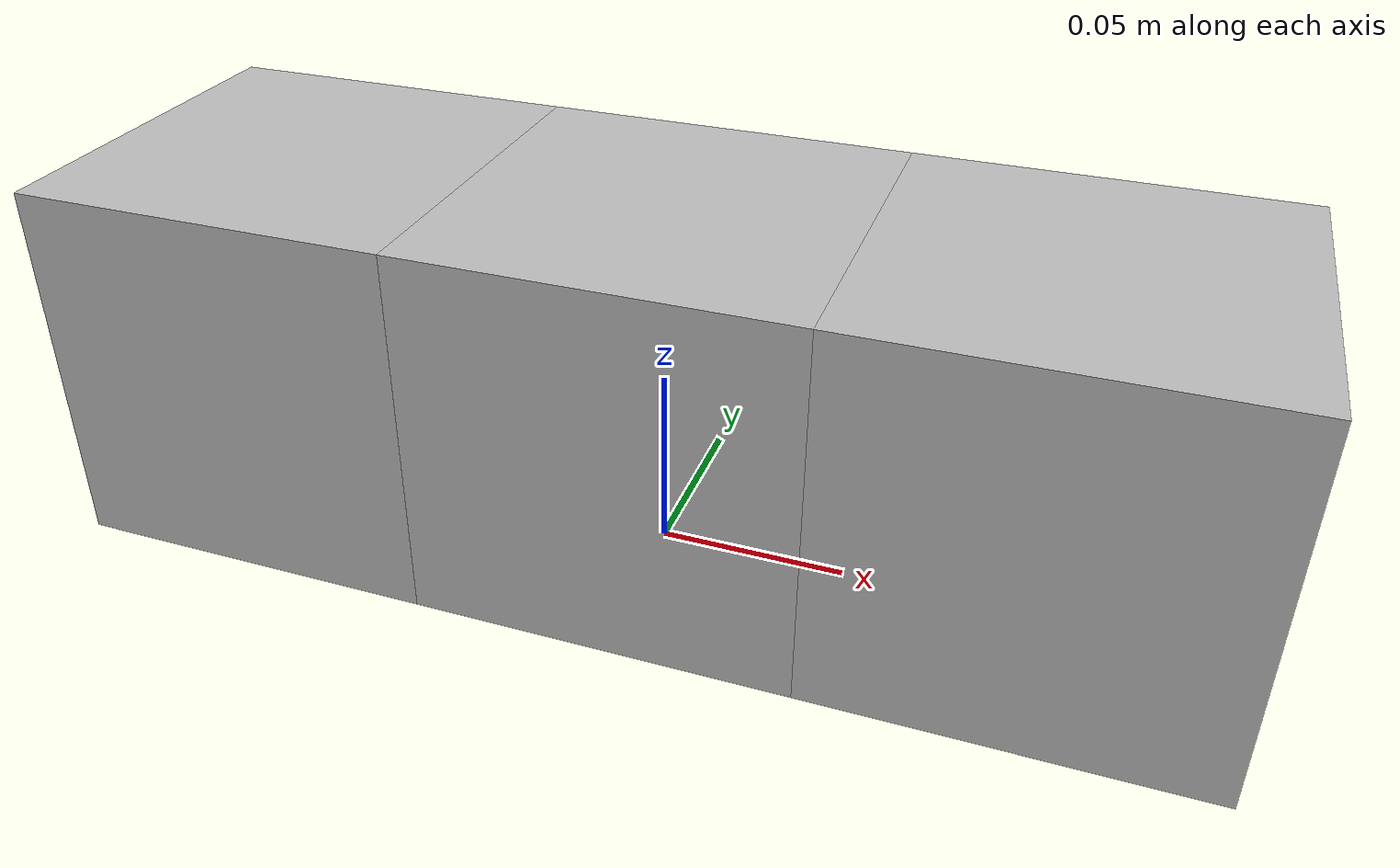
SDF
<?xml version='1.0'?>
<sdf version='1.6'>
		<model name="IJTIP">
			<self_collide>true</self_collide>
			<pose>0.0 0.0 0.0 0.0 0.0 0.0</pose>
			<!-- Start of parts of the pmodel IJTIP -->
				<!-- Start of declarations for part "IJTIP::p::1" -->
					<!-- Start of parts of part "IJTIP::p::1" -->
					<!-- End of parts of part "IJTIP::p::1" -->

					<!-- Start of links of part "IJTIP::p::1" -->
					<!-- link full name is IJTIP::p::1::L2 -->
					<link name="1-L2">
							<pose>-0.10000000149011612 0.0 0.05000000074505806 0.0 0.0 0.0</pose>
							<inertial>
								<pose>0.0 0.0 0.0 0.0 0.0 0.0</pose>
								<inertia>
									<ixx>1.0</ixx>
									<ixy>0.0</ixy>
									<ixz>0.0</ixz>
									<iyy>1.0</iyy>
									<iyz>0.0</iyz>
									<izz>1.0</izz>
								</inertia>
								<mass>1.0</mass>
							</inertial>
							<!-- body full name is IJTIP::p::1::L2::B -->
							<collision name="1--B">
								<laser_retro>0.0</laser_retro>
								<pose>0.0 0.0 0.0 0.0 0.0 0.0</pose>
								<geometry>
									<box>
										<size>0.10000000149011612 0.10000000149011612 0.10000000149011612</size>
									</box>
								</geometry>
								<surface>
									<bounce>
										<restitution_coefficient>0.0</restitution_coefficient>
										<threshold>100000.0</threshold>
									</bounce>
									<friction>
										<ode>
											<mu>1.0</mu>
											<mu2>1.0</mu2>
											<fdir1>0.0 0.0 0.0</fdir1>
											<slip1>0.0</slip1>
											<slip2>0.0</slip2>
										</ode>
										<torsional>
											<coefficient>1.0</coefficient>
											<surface_radius>0.0</surface_radius>
										</torsional>
									</friction>
								</surface>
							</collision>
							<visual name="1--B">
								<laser_retro>0.0</laser_retro>
								<pose>0.0 0.0 0.0 0.0 0.0 0.0</pose>
								<geometry>
									<box>
										<size>0.10000000149011612 0.10000000149011612 0.10000000149011612</size>
									</box>
								</geometry>
								<surface>
									<bounce>
										<restitution_coefficient>0.0</restitution_coefficient>
										<threshold>100000.0</threshold>
									</bounce>
									<friction>
										<ode>
											<mu>1.0</mu>
											<mu2>1.0</mu2>
											<fdir1>0.0 0.0 0.0</fdir1>
											<slip1>0.0</slip1>
											<slip2>0.0</slip2>
										</ode>
										<torsional>
											<coefficient>1.0</coefficient>
											<surface_radius>0.0</surface_radius>
										</torsional>
									</friction>
								</surface>
							</visual>
					</link>
					<!-- End of links of part "IJTIP::p::1" -->

					<!-- Start of joints of part "IJTIP::p::1" -->
					<!-- End of joints of part "IJTIP::p::1" -->

					<!-- Start of fixed connections of part "IJTIP::p::1" -->

					<!-- End of fixed connections of part "IJTIP::p::1" -->
				<!-- End of declarations for part "IJTIP::p::1" -->
				<!-- Start of declarations for part "IJTIP::p::2" -->
					<!-- Start of parts of part "IJTIP::p::2" -->
					<!-- End of parts of part "IJTIP::p::2" -->

					<!-- Start of links of part "IJTIP::p::2" -->
					<!-- link full name is IJTIP::p::2::L2 -->
					<link name="2-L2">
							<pose>0.10000000149011612 0.0 0.05000000074505806 0.0 0.0 0.0</pose>
							<inertial>
								<pose>0.0 0.0 0.0 0.0 0.0 0.0</pose>
								<inertia>
									<ixx>1.0</ixx>
									<ixy>0.0</ixy>
									<ixz>0.0</ixz>
									<iyy>1.0</iyy>
									<iyz>0.0</iyz>
									<izz>1.0</izz>
								</inertia>
								<mass>1.0</mass>
							</inertial>
							<!-- body full name is IJTIP::p::2::L2::B -->
							<collision name="2--B">
								<laser_retro>0.0</laser_retro>
								<pose>0.0 0.0 0.0 0.0 0.0 0.0</pose>
								<geometry>
									<box>
										<size>0.10000000149011612 0.10000000149011612 0.10000000149011612</size>
									</box>
								</geometry>
								<surface>
									<bounce>
										<restitution_coefficient>0.0</restitution_coefficient>
										<threshold>100000.0</threshold>
									</bounce>
									<friction>
										<ode>
											<mu>1.0</mu>
											<mu2>1.0</mu2>
											<fdir1>0.0 0.0 0.0</fdir1>
											<slip1>0.0</slip1>
											<slip2>0.0</slip2>
										</ode>
										<torsional>
											<coefficient>1.0</coefficient>
											<surface_radius>0.0</surface_radius>
										</torsional>
									</friction>
								</surface>
							</collision>
							<visual name="2--B">
								<laser_retro>0.0</laser_retro>
								<pose>0.0 0.0 0.0 0.0 0.0 0.0</pose>
								<geometry>
									<box>
										<size>0.10000000149011612 0.10000000149011612 0.10000000149011612</size>
									</box>
								</geometry>
								<surface>
									<bounce>
										<restitution_coefficient>0.0</restitution_coefficient>
										<threshold>100000.0</threshold>
									</bounce>
									<friction>
										<ode>
											<mu>1.0</mu>
											<mu2>1.0</mu2>
											<fdir1>0.0 0.0 0.0</fdir1>
											<slip1>0.0</slip1>
											<slip2>0.0</slip2>
										</ode>
										<torsional>
											<coefficient>1.0</coefficient>
											<surface_radius>0.0</surface_radius>
										</torsional>
									</friction>
								</surface>
							</visual>
					</link>
					<!-- End of links of part "IJTIP::p::2" -->

					<!-- Start of joints of part "IJTIP::p::2" -->
					<!-- End of joints of part "IJTIP::p::2" -->

					<!-- Start of fixed connections of part "IJTIP::p::2" -->

					<!-- End of fixed connections of part "IJTIP::p::2" -->
				<!-- End of declarations for part "IJTIP::p::2" -->
			<!-- End of parts of the pmodel IJTIP -->

			<!-- Start of links of the pmodel IJTIP -->
			<!-- link full name is IJTIP::L1 -->
			<link name="3-L1">
					<pose>0.0 0.0 0.05000000074505806 0.0 0.0 0.0</pose>
					<inertial>
						<pose>0.0 0.0 0.0 0.0 0.0 0.0</pose>
						<inertia>
							<ixx>1.0</ixx>
							<ixy>0.0</ixy>
							<ixz>0.0</ixz>
							<iyy>1.0</iyy>
							<iyz>0.0</iyz>
							<izz>1.0</izz>
						</inertia>
						<mass>1.0</mass>
					</inertial>
					<!-- body full name is IJTIP::L1::B -->
					<collision name="3--B">
						<laser_retro>0.0</laser_retro>
						<pose>0.0 0.0 0.0 0.0 0.0 0.0</pose>
						<geometry>
							<box>
								<size>0.10000000149011612 0.10000000149011612 0.10000000149011612</size>
							</box>
						</geometry>
						<surface>
							<bounce>
								<restitution_coefficient>0.0</restitution_coefficient>
								<threshold>100000.0</threshold>
							</bounce>
							<friction>
								<ode>
									<mu>1.0</mu>
									<mu2>1.0</mu2>
									<fdir1>0.0 0.0 0.0</fdir1>
									<slip1>0.0</slip1>
									<slip2>0.0</slip2>
								</ode>
								<torsional>
									<coefficient>1.0</coefficient>
									<surface_radius>0.0</surface_radius>
								</torsional>
							</friction>
						</surface>
					</collision>
					<visual name="3--B">
						<laser_retro>0.0</laser_retro>
						<pose>0.0 0.0 0.0 0.0 0.0 0.0</pose>
						<geometry>
							<box>
								<size>0.10000000149011612 0.10000000149011612 0.10000000149011612</size>
							</box>
						</geometry>
						<surface>
							<bounce>
								<restitution_coefficient>0.0</restitution_coefficient>
								<threshold>100000.0</threshold>
							</bounce>
							<friction>
								<ode>
									<mu>1.0</mu>
									<mu2>1.0</mu2>
									<fdir1>0.0 0.0 0.0</fdir1>
									<slip1>0.0</slip1>
									<slip2>0.0</slip2>
								</ode>
								<torsional>
									<coefficient>1.0</coefficient>
									<surface_radius>0.0</surface_radius>
								</torsional>
							</friction>
						</surface>
					</visual>
			</link>
			<!-- End of links of the pmodel IJTIP -->

			<!-- Start of joints of the pmodel IJTIP -->
			<!-- Full name of joint: IJTIP::L1::R from IJTIP::L1 to IJTIP::p::2::L2-->
			<joint name="4-R" type="prismatic">
				<pose>-0.10000000149011612 0.0 0.0 0.0 -0.0 0.0</pose>
				<parent>3-L1</parent>
				<child>2-L2</child>
				<!-- WARNING: The SDF generator relies on annotations of the joint 4-R to specify in SDF aspects of the joint that are
					 accounted for in the equations. -->
				<axis>
					<xyz>0 0 1</xyz>
				</axis>
			</joint>
			<!-- Full name of joint: IJTIP::L1::R from IJTIP::L1 to IJTIP::p::1::L2-->
			<joint name="5-R" type="prismatic">
				<pose>0.10000000149011612 0.0 0.0 0.0 -0.0 0.0</pose>
				<parent>3-L1</parent>
				<child>1-L2</child>
				<!-- WARNING: The SDF generator relies on annotations of the joint 5-R to specify in SDF aspects of the joint that are
					 accounted for in the equations. -->
				<axis>
					<xyz>0 0 1</xyz>
				</axis>
			</joint>
			<!-- End of joints of the pmodel IJTIP -->

			<!-- Start of fixed connections of the pmodel IJTIP -->
			<!-- End of fixed connections of the pmodel IJTIP -->
		</model>
</sdf>
